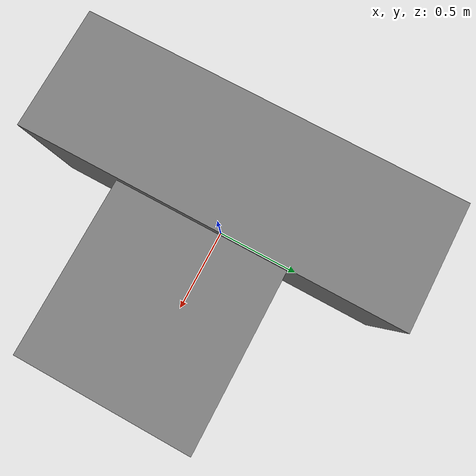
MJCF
<mujoco model="table">
    <worldbody>
        <!-- Table body -->
        <body name="table" pos="-0.001 0 0">
          <geom pos="-0.25 0 0.4" size="0.325 1 0.4" type="box" group="0" name="table_collision" friction="1 0.005 0.0001"/>
          <geom pos="-0.25 0 0.4" size="0.325 1 0.4" type="box" conaffinity="0" contype="0" group="1" name="table_visual"/>
          <site pos="-0.25 0 0.4" name="table_top" size="0.001 0.001 0.001" rgba="0 0 0 0"/>
        </body>
        <!-- Second Table -->
        <body name="table1" pos="-0.1 0 .48">
          <geom pos="0.6 0 .5" size=".4 .4 0.01" type="box" group="2" name="table_collision1" friction="1 0.005 0.0001"/>
          <geom pos="0.6 0.2 .5" size=".4 .4 0.01" type="box" conaffinity="0" contype="0" group="3" name="table_visual1"/>
          <site pos="0.6 0.2 .5" name="table_top1" size="0.001 0.001 0.001" rgba="0 0 0 0"/>
        </body>
    </worldbody>
</mujoco>
